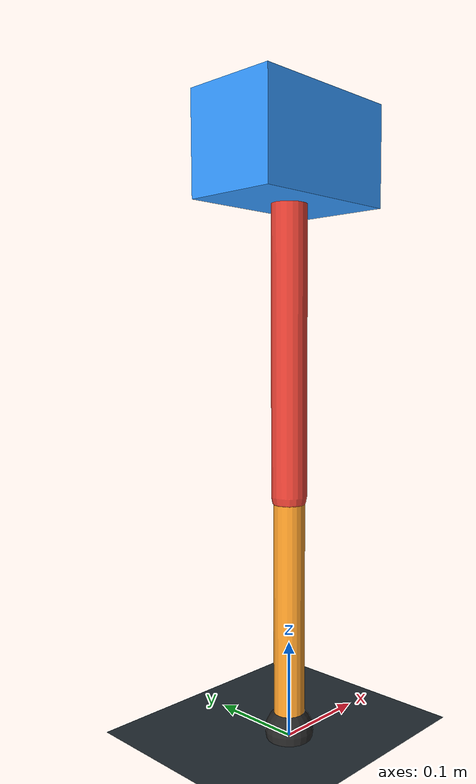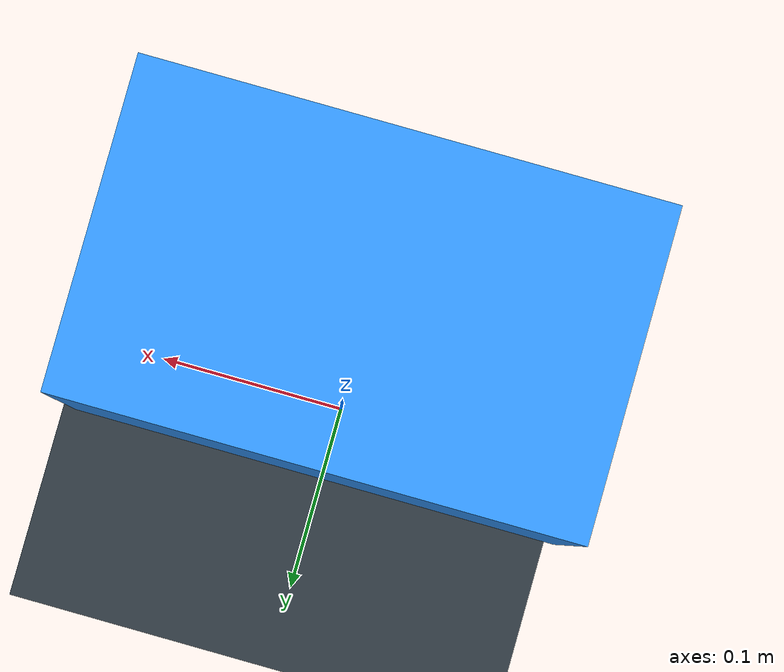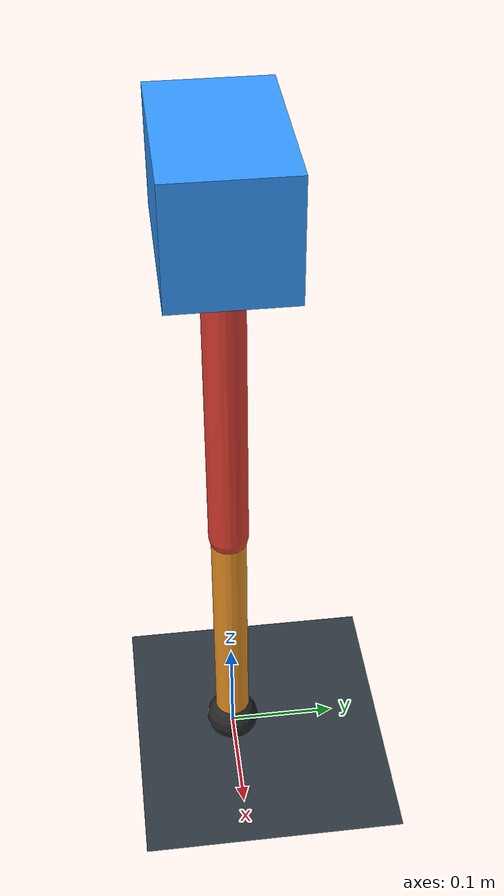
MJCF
<mujoco model="single_axis_two_bar">
  <compiler angle="radian" inertiafromgeom="true"/>
  <option timestep="0.001" integrator="implicitfast" gravity="0 0 -9.81"/>
  <default>
    <joint damping="0.08"/>
    <geom friction="1.2 0.01 0.0001" condim="3"/>
  </default>
  <worldbody>
    <geom name="floor" type="plane" size="5 5 0.1" rgba="0.18 0.22 0.25 1"/>
    <body name="carriage" pos="0 0 0.5890490011774694">
      <joint name="pole_slide" type="slide" axis="0 0 1"/>
      <geom name="payload" type="box" size="0.08 0.05 0.05" mass="3.182681004631398" rgba="0.2 0.6 1 1"/>
      <body name="thigh" pos="0 0 0">
        <joint name="hip" type="hinge" axis="0 1 0"/>
        <geom name="thigh_link" type="capsule" fromto="0 0 0 0 0 -0.33709480995266794" size="0.018" mass="0.24018450640619252" rgba="0.9 0.25 0.2 1"/>
        <body name="shank" pos="0 0 -0.33709480995266794">
          <joint name="knee" type="hinge" axis="0 1 0"/>
          <geom name="shank_link" type="capsule" fromto="0 0 0 0 0 -0.24439900569420764" size="0.016" mass="0.17413752100505425" rgba="0.95 0.6 0.15 1"/>
          <geom name="foot" type="sphere" pos="0 0 -0.24439900569420764" size="0.025" mass="0.03" rgba="0.15 0.15 0.15 1"/>
          <site name="toe" pos="0 0 -0.24439900569420764" size="0.008"/>
        </body>
      </body>
    </body>
  </worldbody>
  <actuator>
    <motor name="hip_motor" joint="hip" ctrlrange="-59.05840719001572 59.05840719001572"/>
    <motor name="knee_motor" joint="knee" ctrlrange="-84.02275443283716 84.02275443283716"/>
  </actuator>
</mujoco>
